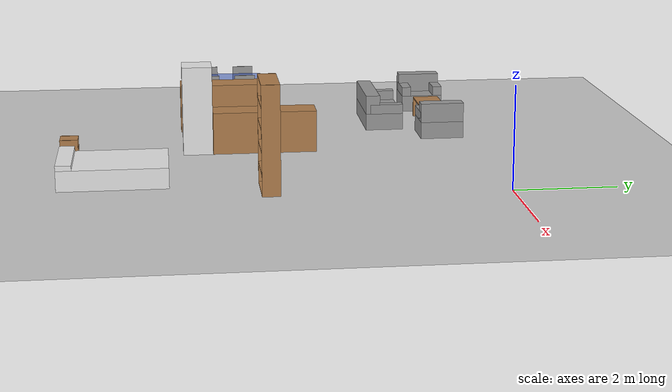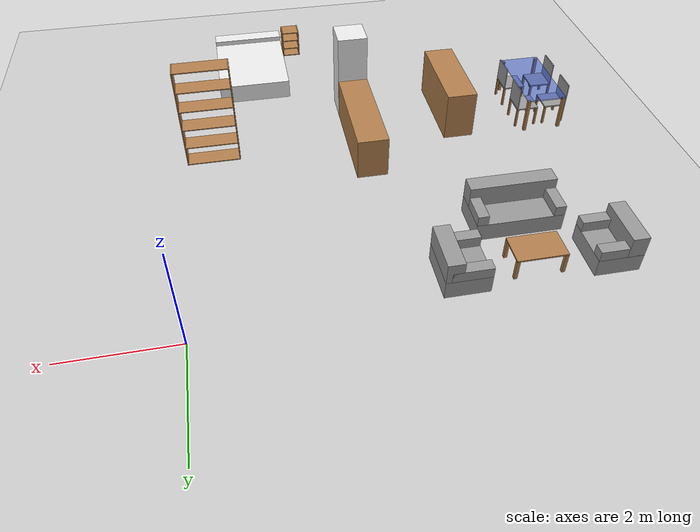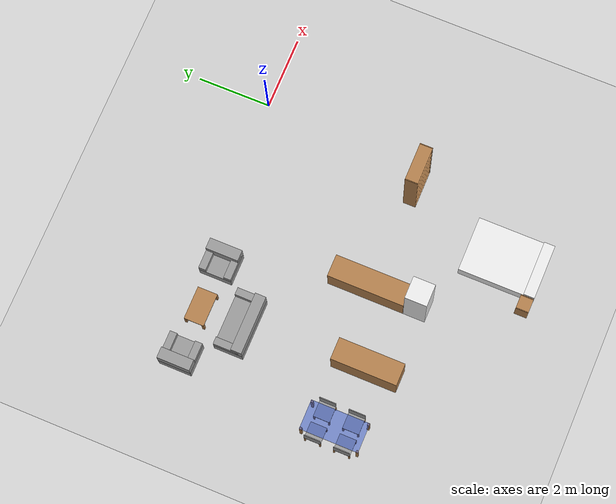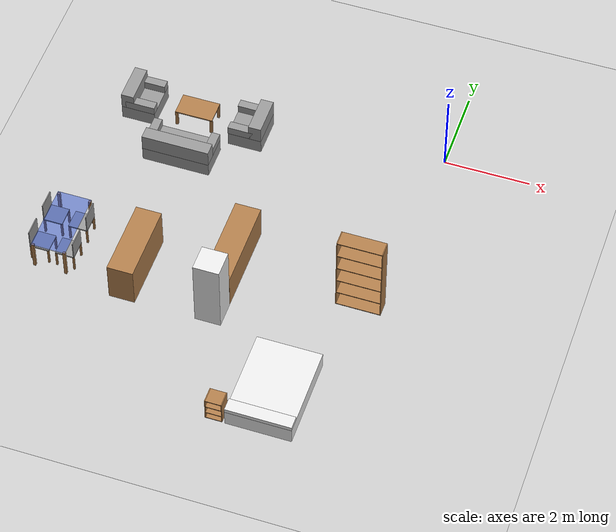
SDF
<sdf version="1.6">
 <world name="GrannyAnnie">
  <model name="ground_plane">
   <static>1</static>
   <link name="link">
    <collision name="collision">
     <geometry><plane><normal>0 0 1</normal><size>100 100</size></plane></geometry>
     <surface><friction><ode><mu>100</mu><mu2>50</mu2></ode></friction></surface>
    </collision>
    <visual name="visual">
     <cast_shadows>0</cast_shadows>
     <geometry><plane><normal>0 0 1</normal><size>100 100</size></plane></geometry>
     <material>
      <script><uri>file://media/materials/scripts/gazebo.material</uri><name>Gazebo/Grey</name></script>
     </material>
    </visual>
    <velocity_decay><linear>0</linear><angular>0</angular></velocity_decay>
   </link>
  </model>
  <model name="mesa_comedor">
   <link name="mesa_link">
    <inertial>
     <pose>0 0 0.513571 0 -0 0</pose>
     <mass>7</mass>
     <inertia>
      <ixx>1.28229</ixx>
      <ixy>0</ixy>
      <ixz>5.70179e-17</ixz>
      <iyy>3.10629</iyy>
      <iyz>0</iyz>
      <izz>3.4192</izz>
     </inertia>
    </inertial>
    <collision name="mesa_link_collision">
     <pose>0 0 0.725 0 -0 0</pose>
     <geometry><box><size>1.6 0.8 0.03</size></box></geometry>
     <surface><friction><ode><mu>1</mu><mu2>1</mu2></ode></friction></surface>
    </collision>
    <collision name="mesa_link_collision_pata_1_link">
     <pose>0.77 0.37 0.355 0 -0 0</pose>
     <geometry><box><size>0.06 0.06 0.71</size></box></geometry>
     <surface><friction><ode><mu>1</mu><mu2>1</mu2></ode></friction></surface>
     <surface><friction><ode><mu>1</mu><mu2>1</mu2></ode></friction></surface>
    </collision>
    <collision name="mesa_link_collision_pata_2_link">
     <pose>0.77 -0.37 0.355 0 -0 0</pose>
     <geometry><box><size>0.06 0.06 0.71</size></box></geometry>
     <surface><friction><ode><mu>1</mu><mu2>1</mu2></ode></friction></surface>
     <surface><friction><ode><mu>1</mu><mu2>1</mu2></ode></friction></surface>
    </collision>
    <collision name="mesa_link_collision_pata_3_link">
     <pose>-0.77 -0.37 0.355 0 -0 0</pose>
     <geometry><box><size>0.06 0.06 0.71</size></box></geometry>
     <surface><friction><ode><mu>1</mu><mu2>1</mu2></ode></friction></surface>
     <surface><friction><ode><mu>1</mu><mu2>1</mu2></ode></friction></surface>
    </collision>
    <collision name="mesa_link_collision_pata_4_link">
     <pose>-0.77 0.37 0.355 0 -0 0</pose>
     <geometry><box><size>0.06 0.06 0.71</size></box></geometry>
     <surface><friction><ode><mu>1</mu><mu2>1</mu2></ode></friction></surface>
     <surface><friction><ode><mu>1</mu><mu2>1</mu2></ode></friction></surface>
    </collision>
    <visual name="mesa_link_visual">
     <pose>0 0 0.725 0 -0 0</pose>
     <geometry><box><size>1.6 0.8 0.03</size></box></geometry>
     <material><script><name>Gazebo/BlueTransparent</name><uri>__default__</uri></script></material>
    </visual>
    <visual name="mesa_link_visual_pata_1_link">
     <pose>0.77 0.37 0.355 0 -0 0</pose>
     <geometry><box><size>0.06 0.06 0.71</size></box></geometry>
     <material><script><name>Gazebo/Wood</name><uri>__default__</uri></script></material>
    </visual>
    <visual name="mesa_link_visual_pata_2_link">
     <pose>0.77 -0.37 0.355 0 -0 0</pose>
     <geometry><box><size>0.06 0.06 0.71</size></box></geometry>
     <material><script><name>Gazebo/Wood</name><uri>__default__</uri></script></material>
    </visual>
    <visual name="mesa_link_visual_pata_3_link">
     <pose>-0.77 -0.37 0.355 0 -0 0</pose>
     <geometry><box><size>0.06 0.06 0.71</size></box></geometry>
     <material><script><name>Gazebo/Wood</name><uri>__default__</uri></script></material>
    </visual>
    <visual name="mesa_link_visual_pata_4_link">
     <pose>-0.77 0.37 0.355 0 -0 0</pose>
     <geometry><box><size>0.06 0.06 0.71</size></box></geometry>
     <material><script><name>Gazebo/Wood</name><uri>__default__</uri></script></material>
    </visual>
    <velocity_decay><linear>0</linear><angular>0</angular></velocity_decay>
    <velocity_decay><linear>0</linear><angular>0</angular></velocity_decay>
    <velocity_decay><linear>0</linear><angular>0</angular></velocity_decay>
    <velocity_decay><linear>0</linear><angular>0</angular></velocity_decay>
    <velocity_decay><linear>0</linear><angular>0</angular></velocity_decay>
    <self_collide>1</self_collide>
   </link>
   <pose>-7.4 -5 0 0 -0 1.57</pose>
   <static>0</static>
  </model>
  <model name="silla_1">
   <link name="silla_link">
    <inertial>
     <pose>0.0215 0 0.353 0 -0 0</pose>
     <mass>2</mass>
     <inertia>
      <ixx>0.674432</ixx>
      <ixy>0</ixy>
      <ixz>-0.012986</ixz>
      <iyy>0.682753</iyy>
      <iyz>0</iyz>
      <izz>0.675561</izz>
     </inertia>
    </inertial>
    <collision name="silla_link_collision">
     <pose>0 0 0.415 0 -0 0</pose>
     <geometry><box><size>0.45 0.45 0.03</size></box></geometry>
     <surface><friction><ode><mu>1</mu><mu2>1</mu2></ode></friction></surface>
    </collision>
    <collision name="silla_link_collision_pata_1_link">
     <pose>0.205 0.205 0.2 0 -0 0</pose>
     <geometry><box><size>0.04 0.04 0.4</size></box></geometry>
     <surface><friction><ode><mu>1</mu><mu2>1</mu2></ode></friction></surface>
     <surface><friction><ode><mu>1</mu><mu2>1</mu2></ode></friction></surface>
    </collision>
    <collision name="silla_link_collision_pata_2_link">
     <pose>0.205 -0.205 0.2 0 -0 0</pose>
     <geometry><box><size>0.04 0.04 0.4</size></box></geometry>
     <surface><friction><ode><mu>1</mu><mu2>1</mu2></ode></friction></surface>
     <surface><friction><ode><mu>1</mu><mu2>1</mu2></ode></friction></surface>
    </collision>
    <collision name="silla_link_collision_pata_3_link">
     <pose>-0.205 -0.205 0.2 0 -0 0</pose>
     <geometry><box><size>0.04 0.04 0.4</size></box></geometry>
     <surface><friction><ode><mu>1</mu><mu2>1</mu2></ode></friction></surface>
     <surface><friction><ode><mu>1</mu><mu2>1</mu2></ode></friction></surface>
    </collision>
    <collision name="silla_link_collision_pata_4_link">
     <pose>-0.205 0.205 0.2 0 -0 0</pose>
     <geometry><box><size>0.04 0.04 0.4</size></box></geometry>
     <surface><friction><ode><mu>1</mu><mu2>1</mu2></ode></friction></surface>
     <surface><friction><ode><mu>1</mu><mu2>1</mu2></ode></friction></surface>
    </collision>
    <collision name="silla_link_collision_respaldo_link">
     <pose>0.215 0 0.655 0 -0 0</pose>
     <geometry><box><size>0.02 0.45 0.45</size></box></geometry>
     <surface><friction><ode><mu>1</mu><mu2>1</mu2></ode></friction></surface>
     <surface><friction><ode><mu>1</mu><mu2>1</mu2></ode></friction></surface>
    </collision>
    <visual name="silla_link_visual">
     <pose>0 0 0.415 0 -0 0</pose>
     <geometry><box><size>0.45 0.45 0.03</size></box></geometry>
     <material><script><name>Gazebo/Grey</name><uri>__default__</uri></script></material>
    </visual>
    <visual name="silla_link_visual_pata_1_link">
     <pose>0.205 0.205 0.2 0 -0 0</pose>
     <geometry><box><size>0.04 0.04 0.4</size></box></geometry>
     <material><script><name>Gazebo/Wood</name><uri>__default__</uri></script></material>
    </visual>
    <visual name="silla_link_visual_pata_2_link">
     <pose>0.205 -0.205 0.2 0 -0 0</pose>
     <geometry><box><size>0.04 0.04 0.4</size></box></geometry>
     <material><script><name>Gazebo/Wood</name><uri>__default__</uri></script></material>
    </visual>
    <visual name="silla_link_visual_pata_3_link">
     <pose>-0.205 -0.205 0.2 0 -0 0</pose>
     <geometry><box><size>0.04 0.04 0.4</size></box></geometry>
     <material><script><name>Gazebo/Wood</name><uri>__default__</uri></script></material>
    </visual>
    <visual name="silla_link_visual_pata_4_link">
     <pose>-0.205 0.205 0.2 0 -0 0</pose>
     <geometry><box><size>0.04 0.04 0.4</size></box></geometry>
     <material><script><name>Gazebo/Wood</name><uri>__default__</uri></script></material>
    </visual>
    <visual name="silla_link_visual_respaldo_link">
     <pose>0.215 0 0.655 0 -0 0</pose>
     <geometry><box><size>0.02 0.45 0.45</size></box></geometry>
     <material><script><name>Gazebo/Grey</name><uri>__default__</uri></script></material>
    </visual>
    <velocity_decay><linear>0</linear><angular>0</angular></velocity_decay>
    <velocity_decay><linear>0</linear><angular>0</angular></velocity_decay>
    <velocity_decay><linear>0</linear><angular>0</angular></velocity_decay>
    <velocity_decay><linear>0</linear><angular>0</angular></velocity_decay>
    <velocity_decay><linear>0</linear><angular>0</angular></velocity_decay>
    <velocity_decay><linear>0</linear><angular>0</angular></velocity_decay>
    <self_collide>1</self_collide>
   </link>
   <pose>-7.1 -5.4 0 0 -0 0</pose>
   <static>0</static>
  </model>
  <model name="silla_2">
   <link name="silla_link">
    <inertial>
     <pose>0.0215 0 0.353 0 -0 0</pose>
     <mass>2</mass>
     <inertia>
      <ixx>0.674432</ixx>
      <ixy>0</ixy>
      <ixz>-0.012986</ixz>
      <iyy>0.682753</iyy>
      <iyz>0</iyz>
      <izz>0.675561</izz>
     </inertia>
    </inertial>
    <collision name="silla_link_collision">
     <pose>0 0 0.415 0 -0 0</pose>
     <geometry><box><size>0.45 0.45 0.03</size></box></geometry>
     <surface><friction><ode><mu>1</mu><mu2>1</mu2></ode></friction></surface>
    </collision>
    <collision name="silla_link_collision_pata_1_link">
     <pose>0.205 0.205 0.2 0 -0 0</pose>
     <geometry><box><size>0.04 0.04 0.4</size></box></geometry>
     <surface><friction><ode><mu>1</mu><mu2>1</mu2></ode></friction></surface>
     <surface><friction><ode><mu>1</mu><mu2>1</mu2></ode></friction></surface>
    </collision>
    <collision name="silla_link_collision_pata_2_link">
     <pose>0.205 -0.205 0.2 0 -0 0</pose>
     <geometry><box><size>0.04 0.04 0.4</size></box></geometry>
     <surface><friction><ode><mu>1</mu><mu2>1</mu2></ode></friction></surface>
     <surface><friction><ode><mu>1</mu><mu2>1</mu2></ode></friction></surface>
    </collision>
    <collision name="silla_link_collision_pata_3_link">
     <pose>-0.205 -0.205 0.2 0 -0 0</pose>
     <geometry><box><size>0.04 0.04 0.4</size></box></geometry>
     <surface><friction><ode><mu>1</mu><mu2>1</mu2></ode></friction></surface>
     <surface><friction><ode><mu>1</mu><mu2>1</mu2></ode></friction></surface>
    </collision>
    <collision name="silla_link_collision_pata_4_link">
     <pose>-0.205 0.205 0.2 0 -0 0</pose>
     <geometry><box><size>0.04 0.04 0.4</size></box></geometry>
     <surface><friction><ode><mu>1</mu><mu2>1</mu2></ode></friction></surface>
     <surface><friction><ode><mu>1</mu><mu2>1</mu2></ode></friction></surface>
    </collision>
    <collision name="silla_link_collision_respaldo_link">
     <pose>0.215 0 0.655 0 -0 0</pose>
     <geometry><box><size>0.02 0.45 0.45</size></box></geometry>
     <surface><friction><ode><mu>1</mu><mu2>1</mu2></ode></friction></surface>
     <surface><friction><ode><mu>1</mu><mu2>1</mu2></ode></friction></surface>
    </collision>
    <visual name="silla_link_visual">
     <pose>0 0 0.415 0 -0 0</pose>
     <geometry><box><size>0.45 0.45 0.03</size></box></geometry>
     <material><script><name>Gazebo/Grey</name><uri>__default__</uri></script></material>
    </visual>
    <visual name="silla_link_visual_pata_1_link">
     <pose>0.205 0.205 0.2 0 -0 0</pose>
     <geometry><box><size>0.04 0.04 0.4</size></box></geometry>
     <material><script><name>Gazebo/Wood</name><uri>__default__</uri></script></material>
    </visual>
    <visual name="silla_link_visual_pata_2_link">
     <pose>0.205 -0.205 0.2 0 -0 0</pose>
     <geometry><box><size>0.04 0.04 0.4</size></box></geometry>
     <material><script><name>Gazebo/Wood</name><uri>__default__</uri></script></material>
    </visual>
    <visual name="silla_link_visual_pata_3_link">
     <pose>-0.205 -0.205 0.2 0 -0 0</pose>
     <geometry><box><size>0.04 0.04 0.4</size></box></geometry>
     <material><script><name>Gazebo/Wood</name><uri>__default__</uri></script></material>
    </visual>
    <visual name="silla_link_visual_pata_4_link">
     <pose>-0.205 0.205 0.2 0 -0 0</pose>
     <geometry><box><size>0.04 0.04 0.4</size></box></geometry>
     <material><script><name>Gazebo/Wood</name><uri>__default__</uri></script></material>
    </visual>
    <visual name="silla_link_visual_respaldo_link">
     <pose>0.215 0 0.655 0 -0 0</pose>
     <geometry><box><size>0.02 0.45 0.45</size></box></geometry>
     <material><script><name>Gazebo/Grey</name><uri>__default__</uri></script></material>
    </visual>
    <velocity_decay><linear>0</linear><angular>0</angular></velocity_decay>
    <velocity_decay><linear>0</linear><angular>0</angular></velocity_decay>
    <velocity_decay><linear>0</linear><angular>0</angular></velocity_decay>
    <velocity_decay><linear>0</linear><angular>0</angular></velocity_decay>
    <velocity_decay><linear>0</linear><angular>0</angular></velocity_decay>
    <velocity_decay><linear>0</linear><angular>0</angular></velocity_decay>
    <self_collide>1</self_collide>
   </link>
   <pose>-7.1 -4.6 0 0 -0 0</pose>
   <static>0</static>
  </model>
  <model name="silla_3">
   <link name="silla_link">
    <inertial>
     <pose>0.0215 0 0.353 0 -0 0</pose>
     <mass>2</mass>
     <inertia>
      <ixx>0.674432</ixx>
      <ixy>0</ixy>
      <ixz>-0.012986</ixz>
      <iyy>0.682753</iyy>
      <iyz>0</iyz>
      <izz>0.675561</izz>
     </inertia>
    </inertial>
    <collision name="silla_link_collision">
     <pose>0 0 0.415 0 -0 0</pose>
     <geometry><box><size>0.45 0.45 0.03</size></box></geometry>
     <surface><friction><ode><mu>1</mu><mu2>1</mu2></ode></friction></surface>
    </collision>
    <collision name="silla_link_collision_pata_1_link">
     <pose>0.205 0.205 0.2 0 -0 0</pose>
     <geometry><box><size>0.04 0.04 0.4</size></box></geometry>
     <surface><friction><ode><mu>1</mu><mu2>1</mu2></ode></friction></surface>
     <surface><friction><ode><mu>1</mu><mu2>1</mu2></ode></friction></surface>
    </collision>
    <collision name="silla_link_collision_pata_2_link">
     <pose>0.205 -0.205 0.2 0 -0 0</pose>
     <geometry><box><size>0.04 0.04 0.4</size></box></geometry>
     <surface><friction><ode><mu>1</mu><mu2>1</mu2></ode></friction></surface>
     <surface><friction><ode><mu>1</mu><mu2>1</mu2></ode></friction></surface>
    </collision>
    <collision name="silla_link_collision_pata_3_link">
     <pose>-0.205 -0.205 0.2 0 -0 0</pose>
     <geometry><box><size>0.04 0.04 0.4</size></box></geometry>
     <surface><friction><ode><mu>1</mu><mu2>1</mu2></ode></friction></surface>
     <surface><friction><ode><mu>1</mu><mu2>1</mu2></ode></friction></surface>
    </collision>
    <collision name="silla_link_collision_pata_4_link">
     <pose>-0.205 0.205 0.2 0 -0 0</pose>
     <geometry><box><size>0.04 0.04 0.4</size></box></geometry>
     <surface><friction><ode><mu>1</mu><mu2>1</mu2></ode></friction></surface>
     <surface><friction><ode><mu>1</mu><mu2>1</mu2></ode></friction></surface>
    </collision>
    <collision name="silla_link_collision_respaldo_link">
     <pose>0.215 0 0.655 0 -0 0</pose>
     <geometry><box><size>0.02 0.45 0.45</size></box></geometry>
     <surface><friction><ode><mu>1</mu><mu2>1</mu2></ode></friction></surface>
     <surface><friction><ode><mu>1</mu><mu2>1</mu2></ode></friction></surface>
    </collision>
    <visual name="silla_link_visual">
     <pose>0 0 0.415 0 -0 0</pose>
     <geometry><box><size>0.45 0.45 0.03</size></box></geometry>
     <material><script><name>Gazebo/Grey</name><uri>__default__</uri></script></material>
    </visual>
    <visual name="silla_link_visual_pata_1_link">
     <pose>0.205 0.205 0.2 0 -0 0</pose>
     <geometry><box><size>0.04 0.04 0.4</size></box></geometry>
     <material><script><name>Gazebo/Wood</name><uri>__default__</uri></script></material>
    </visual>
    <visual name="silla_link_visual_pata_2_link">
     <pose>0.205 -0.205 0.2 0 -0 0</pose>
     <geometry><box><size>0.04 0.04 0.4</size></box></geometry>
     <material><script><name>Gazebo/Wood</name><uri>__default__</uri></script></material>
    </visual>
    <visual name="silla_link_visual_pata_3_link">
     <pose>-0.205 -0.205 0.2 0 -0 0</pose>
     <geometry><box><size>0.04 0.04 0.4</size></box></geometry>
     <material><script><name>Gazebo/Wood</name><uri>__default__</uri></script></material>
    </visual>
    <visual name="silla_link_visual_pata_4_link">
     <pose>-0.205 0.205 0.2 0 -0 0</pose>
     <geometry><box><size>0.04 0.04 0.4</size></box></geometry>
     <material><script><name>Gazebo/Wood</name><uri>__default__</uri></script></material>
    </visual>
    <visual name="silla_link_visual_respaldo_link">
     <pose>0.215 0 0.655 0 -0 0</pose>
     <geometry><box><size>0.02 0.45 0.45</size></box></geometry>
     <material><script><name>Gazebo/Grey</name><uri>__default__</uri></script></material>
    </visual>
    <velocity_decay><linear>0</linear><angular>0</angular></velocity_decay>
    <velocity_decay><linear>0</linear><angular>0</angular></velocity_decay>
    <velocity_decay><linear>0</linear><angular>0</angular></velocity_decay>
    <velocity_decay><linear>0</linear><angular>0</angular></velocity_decay>
    <velocity_decay><linear>0</linear><angular>0</angular></velocity_decay>
    <velocity_decay><linear>0</linear><angular>0</angular></velocity_decay>
    <self_collide>1</self_collide>
   </link>
   <pose>-7.7 -5.4 0 0 -0 3.14</pose>
   <static>0</static>
  </model>
  <model name="silla_4">
   <link name="silla_link">
    <inertial>
     <pose>0.0215 0 0.353 0 -0 0</pose>
     <mass>2</mass>
     <inertia>
      <ixx>0.674432</ixx>
      <ixy>0</ixy>
      <ixz>-0.012986</ixz>
      <iyy>0.682753</iyy>
      <iyz>0</iyz>
      <izz>0.675561</izz>
     </inertia>
    </inertial>
    <collision name="silla_link_collision">
     <pose>0 0 0.415 0 -0 0</pose>
     <geometry><box><size>0.45 0.45 0.03</size></box></geometry>
     <surface><friction><ode><mu>1</mu><mu2>1</mu2></ode></friction></surface>
    </collision>
    <collision name="silla_link_collision_pata_1_link">
     <pose>0.205 0.205 0.2 0 -0 0</pose>
     <geometry><box><size>0.04 0.04 0.4</size></box></geometry>
     <surface><friction><ode><mu>1</mu><mu2>1</mu2></ode></friction></surface>
     <surface><friction><ode><mu>1</mu><mu2>1</mu2></ode></friction></surface>
    </collision>
    <collision name="silla_link_collision_pata_2_link">
     <pose>0.205 -0.205 0.2 0 -0 0</pose>
     <geometry><box><size>0.04 0.04 0.4</size></box></geometry>
     <surface><friction><ode><mu>1</mu><mu2>1</mu2></ode></friction></surface>
     <surface><friction><ode><mu>1</mu><mu2>1</mu2></ode></friction></surface>
    </collision>
    <collision name="silla_link_collision_pata_3_link">
     <pose>-0.205 -0.205 0.2 0 -0 0</pose>
     <geometry><box><size>0.04 0.04 0.4</size></box></geometry>
     <surface><friction><ode><mu>1</mu><mu2>1</mu2></ode></friction></surface>
     <surface><friction><ode><mu>1</mu><mu2>1</mu2></ode></friction></surface>
    </collision>
    <collision name="silla_link_collision_pata_4_link">
     <pose>-0.205 0.205 0.2 0 -0 0</pose>
     <geometry><box><size>0.04 0.04 0.4</size></box></geometry>
     <surface><friction><ode><mu>1</mu><mu2>1</mu2></ode></friction></surface>
     <surface><friction><ode><mu>1</mu><mu2>1</mu2></ode></friction></surface>
    </collision>
    <collision name="silla_link_collision_respaldo_link">
     <pose>0.215 0 0.655 0 -0 0</pose>
     <geometry><box><size>0.02 0.45 0.45</size></box></geometry>
     <surface><friction><ode><mu>1</mu><mu2>1</mu2></ode></friction></surface>
     <surface><friction><ode><mu>1</mu><mu2>1</mu2></ode></friction></surface>
    </collision>
    <visual name="silla_link_visual">
     <pose>0 0 0.415 0 -0 0</pose>
     <geometry><box><size>0.45 0.45 0.03</size></box></geometry>
     <material><script><name>Gazebo/Grey</name><uri>__default__</uri></script></material>
    </visual>
    <visual name="silla_link_visual_pata_1_link">
     <pose>0.205 0.205 0.2 0 -0 0</pose>
     <geometry><box><size>0.04 0.04 0.4</size></box></geometry>
     <material><script><name>Gazebo/Wood</name><uri>__default__</uri></script></material>
    </visual>
    <visual name="silla_link_visual_pata_2_link">
     <pose>0.205 -0.205 0.2 0 -0 0</pose>
     <geometry><box><size>0.04 0.04 0.4</size></box></geometry>
     <material><script><name>Gazebo/Wood</name><uri>__default__</uri></script></material>
    </visual>
    <visual name="silla_link_visual_pata_3_link">
     <pose>-0.205 -0.205 0.2 0 -0 0</pose>
     <geometry><box><size>0.04 0.04 0.4</size></box></geometry>
     <material><script><name>Gazebo/Wood</name><uri>__default__</uri></script></material>
    </visual>
    <visual name="silla_link_visual_pata_4_link">
     <pose>-0.205 0.205 0.2 0 -0 0</pose>
     <geometry><box><size>0.04 0.04 0.4</size></box></geometry>
     <material><script><name>Gazebo/Wood</name><uri>__default__</uri></script></material>
    </visual>
    <visual name="silla_link_visual_respaldo_link">
     <pose>0.215 0 0.655 0 -0 0</pose>
     <geometry><box><size>0.02 0.45 0.45</size></box></geometry>
     <material><script><name>Gazebo/Grey</name><uri>__default__</uri></script></material>
    </visual>
    <velocity_decay><linear>0</linear><angular>0</angular></velocity_decay>
    <velocity_decay><linear>0</linear><angular>0</angular></velocity_decay>
    <velocity_decay><linear>0</linear><angular>0</angular></velocity_decay>
    <velocity_decay><linear>0</linear><angular>0</angular></velocity_decay>
    <velocity_decay><linear>0</linear><angular>0</angular></velocity_decay>
    <velocity_decay><linear>0</linear><angular>0</angular></velocity_decay>
    <self_collide>1</self_collide>
   </link>
   <pose>-7.7 -4.6 0 0 -0 3.14</pose>
   <static>0</static>
  </model>
  <model name="mesa_salon">
   <link name="mesa_link">
    <inertial>
     <pose>0 0 0.3075 0 -0 0</pose>
     <mass>4</mass>
     <inertia>
      <ixx>0.666275</ixx>
      <ixy>1.92593e-34</ixy>
      <ixz>1.70697e-17</ixz>
      <iyy>0.899025</iyy>
      <iyz>4.26742e-18</iyz>
      <izz>0.97285</izz>
     </inertia>
    </inertial>
    <collision name="mesa_link_collision">
     <pose>0 0 0.415 0 -0 0</pose>
     <geometry><box><size>0.9 0.55 0.03</size></box></geometry>
     <surface><friction><ode><mu>1</mu><mu2>1</mu2></ode></friction></surface>
    </collision>
    <collision name="mesa_link_collision_pata_1_link">
     <pose>0.42 0.245 0.2 0 -0 0</pose>
     <geometry><box><size>0.06 0.06 0.4</size></box></geometry>
     <surface><friction><ode><mu>1</mu><mu2>1</mu2></ode></friction></surface>
     <surface><friction><ode><mu>1</mu><mu2>1</mu2></ode></friction></surface>
    </collision>
    <collision name="mesa_link_collision_pata_2_link">
     <pose>0.42 -0.245 0.2 0 -0 0</pose>
     <geometry><box><size>0.06 0.06 0.4</size></box></geometry>
     <surface><friction><ode><mu>1</mu><mu2>1</mu2></ode></friction></surface>
     <surface><friction><ode><mu>1</mu><mu2>1</mu2></ode></friction></surface>
    </collision>
    <collision name="mesa_link_collision_pata_3_link">
     <pose>-0.42 -0.245 0.2 0 -0 0</pose>
     <geometry><box><size>0.06 0.06 0.4</size></box></geometry>
     <surface><friction><ode><mu>1</mu><mu2>1</mu2></ode></friction></surface>
     <surface><friction><ode><mu>1</mu><mu2>1</mu2></ode></friction></surface>
    </collision>
    <collision name="mesa_link_collision_pata_4_link">
     <pose>-0.42 0.245 0.2 0 -0 0</pose>
     <geometry><box><size>0.06 0.06 0.4</size></box></geometry>
     <surface><friction><ode><mu>1</mu><mu2>1</mu2></ode></friction></surface>
     <surface><friction><ode><mu>1</mu><mu2>1</mu2></ode></friction></surface>
    </collision>
    <visual name="mesa_link_visual">
     <pose>0 0 0.415 0 -0 0</pose>
     <geometry><box><size>0.9 0.55 0.03</size></box></geometry>
     <material><script><name>Gazebo/Wood</name><uri>__default__</uri></script></material>
    </visual>
    <visual name="mesa_link_visual_pata_1_link">
     <pose>0.42 0.245 0.2 0 -0 0</pose>
     <geometry><box><size>0.06 0.06 0.4</size></box></geometry>
     <material><script><name>Gazebo/Wood</name><uri>__default__</uri></script></material>
    </visual>
    <visual name="mesa_link_visual_pata_2_link">
     <pose>0.42 -0.245 0.2 0 -0 0</pose>
     <geometry><box><size>0.06 0.06 0.4</size></box></geometry>
     <material><script><name>Gazebo/Wood</name><uri>__default__</uri></script></material>
    </visual>
    <visual name="mesa_link_visual_pata_3_link">
     <pose>-0.42 -0.245 0.2 0 -0 0</pose>
     <geometry><box><size>0.06 0.06 0.4</size></box></geometry>
     <material><script><name>Gazebo/Wood</name><uri>__default__</uri></script></material>
    </visual>
    <visual name="mesa_link_visual_pata_4_link">
     <pose>-0.42 0.245 0.2 0 -0 0</pose>
     <geometry><box><size>0.06 0.06 0.4</size></box></geometry>
     <material><script><name>Gazebo/Wood</name><uri>__default__</uri></script></material>
    </visual>
    <velocity_decay><linear>0</linear><angular>0</angular></velocity_decay>
    <velocity_decay><linear>0</linear><angular>0</angular></velocity_decay>
    <velocity_decay><linear>0</linear><angular>0</angular></velocity_decay>
    <velocity_decay><linear>0</linear><angular>0</angular></velocity_decay>
    <velocity_decay><linear>0</linear><angular>0</angular></velocity_decay>
    <self_collide>1</self_collide>
   </link>
   <pose>-5.8 -0.6 0 0 -0 0</pose>
   <static>0</static>
  </model>
  <model name="sofa_x2_salon">
   <link name="sofa_link">
    <inertial>
     <pose>0 0.011539 0.257692 0 -0 0</pose>
     <mass>13</mass>
     <inertia>
      <ixx>0.7625</ixx>
      <ixy>0</ixy>
      <ixz>0</ixz>
      <iyy>1.67673</iyy>
      <iyz>-0.0463462</iyz>
      <izz>1.44577</izz>
     </inertia>
    </inertial>
    <collision name="sofa_link_collision">
     <pose>0 0 0.175 0 -0 0</pose>
     <geometry><box><size>1.6 0.8 0.35</size></box></geometry>
     <surface><friction><ode><mu>1</mu><mu2>1</mu2></ode></friction></surface>
    </collision>
    <collision name="sofa_link_collision_brazo_1_link">
     <pose>0.7 -0.05 0.45 0 -0 0</pose>
     <geometry><box><size>0.2 0.7 0.2</size></box></geometry>
     <surface><friction><ode><mu>1</mu><mu2>1</mu2></ode></friction></surface>
     <surface><friction><ode><mu>1</mu><mu2>1</mu2></ode></friction></surface>
    </collision>
    <collision name="sofa_link_collision_brazo_2_link">
     <pose>-0.7 -0.05 0.45 0 -0 0</pose>
     <geometry><box><size>0.2 0.7 0.2</size></box></geometry>
     <surface><friction><ode><mu>1</mu><mu2>1</mu2></ode></friction></surface>
     <surface><friction><ode><mu>1</mu><mu2>1</mu2></ode></friction></surface>
    </collision>
    <collision name="sofa_link_collision_respaldo_link">
     <pose>0 0.25 0.55 0 -0 0</pose>
     <geometry><box><size>1.6 0.3 0.4</size></box></geometry>
     <surface><friction><ode><mu>1</mu><mu2>1</mu2></ode></friction></surface>
     <surface><friction><ode><mu>1</mu><mu2>1</mu2></ode></friction></surface>
    </collision>
    <visual name="sofa_link_visual">
     <pose>0 0 0.175 0 -0 0</pose>
     <geometry><box><size>1.6 0.8 0.35</size></box></geometry>
     <material><script><name>Gazebo/Grey</name><uri>__default__</uri></script></material>
    </visual>
    <visual name="sofa_link_visual_brazo_1_link">
     <pose>0.7 -0.05 0.45 0 -0 0</pose>
     <geometry><box><size>0.2 0.7 0.2</size></box></geometry>
     <material><script><name>Gazebo/Grey</name><uri>__default__</uri></script></material>
    </visual>
    <visual name="sofa_link_visual_brazo_2_link">
     <pose>-0.7 -0.05 0.45 0 -0 0</pose>
     <geometry><box><size>0.2 0.7 0.2</size></box></geometry>
     <material><script><name>Gazebo/Grey</name><uri>__default__</uri></script></material>
    </visual>
    <visual name="sofa_link_visual_respaldo_link">
     <pose>0 0.25 0.55 0 -0 0</pose>
     <geometry><box><size>1.6 0.3 0.4</size></box></geometry>
     <material><script><name>Gazebo/Grey</name><uri>__default__</uri></script></material>
    </visual>
    <velocity_decay><linear>0</linear><angular>0</angular></velocity_decay>
    <velocity_decay><linear>0</linear><angular>0</angular></velocity_decay>
    <velocity_decay><linear>0</linear><angular>0</angular></velocity_decay>
    <velocity_decay><linear>0</linear><angular>0</angular></velocity_decay>
    <self_collide>1</self_collide>
   </link>
   <pose>-5.8 -1.7 0 0 -0 3.14</pose>
   <static>0</static>
  </model>
  <model name="sofa_x1_1_salon">
   <link name="sofa_link">
    <inertial>
     <pose>0 0.01875 0.309375 0 -0 0</pose>
     <mass>8</mass>
     <inertia>
      <ixx>0.705859</ixx>
      <ixy>0</ixy>
      <ixz>0</ixz>
      <iyy>0.886172</iyy>
      <iyz>-0.0385938</iyz>
      <izz>0.709687</izz>
     </inertia>
    </inertial>
    <collision name="sofa_link_collision">
     <pose>0 0 0.175 0 -0 0</pose>
     <geometry><box><size>0.9 0.8 0.35</size></box></geometry>
     <surface><friction><ode><mu>1</mu><mu2>1</mu2></ode></friction></surface>
    </collision>
    <collision name="sofa_link_collision_brazo_1_link">
     <pose>0.35 -0.05 0.45 0 -0 0</pose>
     <geometry><box><size>0.2 0.7 0.2</size></box></geometry>
     <surface><friction><ode><mu>1</mu><mu2>1</mu2></ode></friction></surface>
     <surface><friction><ode><mu>1</mu><mu2>1</mu2></ode></friction></surface>
    </collision>
    <collision name="sofa_link_collision_brazo_2_link">
     <pose>-0.35 -0.05 0.45 0 -0 0</pose>
     <geometry><box><size>0.2 0.7 0.2</size></box></geometry>
     <surface><friction><ode><mu>1</mu><mu2>1</mu2></ode></friction></surface>
     <surface><friction><ode><mu>1</mu><mu2>1</mu2></ode></friction></surface>
    </collision>
    <collision name="sofa_link_collision_respaldo_link">
     <pose>0 0.25 0.55 0 -0 0</pose>
     <geometry><box><size>0.9 0.3 0.4</size></box></geometry>
     <surface><friction><ode><mu>1</mu><mu2>1</mu2></ode></friction></surface>
     <surface><friction><ode><mu>1</mu><mu2>1</mu2></ode></friction></surface>
    </collision>
    <visual name="sofa_link_visual">
     <pose>0 0 0.175 0 -0 0</pose>
     <geometry><box><size>0.9 0.8 0.35</size></box></geometry>
     <material><script><name>Gazebo/Grey</name><uri>__default__</uri></script></material>
    </visual>
    <visual name="sofa_link_visual_brazo_1_link">
     <pose>0.35 -0.05 0.45 0 -0 0</pose>
     <geometry><box><size>0.2 0.7 0.2</size></box></geometry>
     <material><script><name>Gazebo/Grey</name><uri>__default__</uri></script></material>
    </visual>
    <visual name="sofa_link_visual_brazo_2_link">
     <pose>-0.35 -0.05 0.45 0 -0 0</pose>
     <geometry><box><size>0.2 0.7 0.2</size></box></geometry>
     <material><script><name>Gazebo/Grey</name><uri>__default__</uri></script></material>
    </visual>
    <visual name="sofa_link_visual_respaldo_link">
     <pose>0 0.25 0.55 0 -0 0</pose>
     <geometry><box><size>0.9 0.3 0.4</size></box></geometry>
     <material><script><name>Gazebo/Grey</name><uri>__default__</uri></script></material>
    </visual>
    <velocity_decay><linear>0</linear><angular>0</angular></velocity_decay>
    <velocity_decay><linear>0</linear><angular>0</angular></velocity_decay>
    <velocity_decay><linear>0</linear><angular>0</angular></velocity_decay>
    <velocity_decay><linear>0</linear><angular>0</angular></velocity_decay>
    <self_collide>1</self_collide>
   </link>
   <pose>-4.5 -0.6 0 0 0 -1.57</pose>
   <static>0</static>
  </model>
  <model name="sofa_x1_2_salon">
   <link name="sofa_link">
    <inertial>
     <pose>0 0.01875 0.309375 0 -0 0</pose>
     <mass>8</mass>
     <inertia>
      <ixx>0.705859</ixx>
      <ixy>0</ixy>
      <ixz>0</ixz>
      <iyy>0.886172</iyy>
      <iyz>-0.0385938</iyz>
      <izz>0.709687</izz>
     </inertia>
    </inertial>
    <collision name="sofa_link_collision">
     <pose>0 0 0.175 0 -0 0</pose>
     <geometry><box><size>0.9 0.8 0.35</size></box></geometry>
     <surface><friction><ode><mu>1</mu><mu2>1</mu2></ode></friction></surface>
    </collision>
    <collision name="sofa_link_collision_brazo_1_link">
     <pose>0.35 -0.05 0.45 0 -0 0</pose>
     <geometry><box><size>0.2 0.7 0.2</size></box></geometry>
     <surface><friction><ode><mu>1</mu><mu2>1</mu2></ode></friction></surface>
     <surface><friction><ode><mu>1</mu><mu2>1</mu2></ode></friction></surface>
    </collision>
    <collision name="sofa_link_collision_brazo_2_link">
     <pose>-0.35 -0.05 0.45 0 -0 0</pose>
     <geometry><box><size>0.2 0.7 0.2</size></box></geometry>
     <surface><friction><ode><mu>1</mu><mu2>1</mu2></ode></friction></surface>
     <surface><friction><ode><mu>1</mu><mu2>1</mu2></ode></friction></surface>
    </collision>
    <collision name="sofa_link_collision_respaldo_link">
     <pose>0 0.25 0.55 0 -0 0</pose>
     <geometry><box><size>0.9 0.3 0.4</size></box></geometry>
     <surface><friction><ode><mu>1</mu><mu2>1</mu2></ode></friction></surface>
     <surface><friction><ode><mu>1</mu><mu2>1</mu2></ode></friction></surface>
    </collision>
    <visual name="sofa_link_visual">
     <pose>0 0 0.175 0 -0 0</pose>
     <geometry><box><size>0.9 0.8 0.35</size></box></geometry>
     <material><script><name>Gazebo/Grey</name><uri>__default__</uri></script></material>
    </visual>
    <visual name="sofa_link_visual_brazo_1_link">
     <pose>0.35 -0.05 0.45 0 -0 0</pose>
     <geometry><box><size>0.2 0.7 0.2</size></box></geometry>
     <material><script><name>Gazebo/Grey</name><uri>__default__</uri></script></material>
    </visual>
    <visual name="sofa_link_visual_brazo_2_link">
     <pose>-0.35 -0.05 0.45 0 -0 0</pose>
     <geometry><box><size>0.2 0.7 0.2</size></box></geometry>
     <material><script><name>Gazebo/Grey</name><uri>__default__</uri></script></material>
    </visual>
    <visual name="sofa_link_visual_respaldo_link">
     <pose>0 0.25 0.55 0 -0 0</pose>
     <geometry><box><size>0.9 0.3 0.4</size></box></geometry>
     <material><script><name>Gazebo/Grey</name><uri>__default__</uri></script></material>
    </visual>
    <velocity_decay><linear>0</linear><angular>0</angular></velocity_decay>
    <velocity_decay><linear>0</linear><angular>0</angular></velocity_decay>
    <velocity_decay><linear>0</linear><angular>0</angular></velocity_decay>
    <velocity_decay><linear>0</linear><angular>0</angular></velocity_decay>
    <self_collide>1</self_collide>
   </link>
   <pose>-7.1 -0.6 0 0 -0 1.57</pose>
   <static>0</static>
  </model>
  <model name="encimera">
   <link name="encimera_link">
    <inertial>
     <pose>0 0 0.425 0 -0 0</pose>
     <mass>50</mass>
     <inertia><ixx>5</ixx><ixy>0</ixy><ixz>0</ixz><iyy>5</iyy><iyz>0</iyz><izz>5</izz></inertia>
    </inertial>
    <collision name="encimera_link_collision">
     <pose>0 0 0.425 0 -0 0</pose>
     <geometry><box><size>2.1 0.6 0.85</size></box></geometry>
     <surface><friction><ode><mu>1</mu><mu2>1</mu2></ode></friction></surface>
    </collision>
    <visual name="encimera_link_visual">
     <pose>0 0 0.425 0 -0 0</pose>
     <geometry><box><size>2.1 0.6 0.85</size></box></geometry>
     <material><script><name>Gazebo/Wood</name><uri>__default__</uri></script></material>
    </visual>
    <velocity_decay><linear>0</linear><angular>0</angular></velocity_decay>
    <self_collide>1</self_collide>
   </link>
   <pose>-3.6 -4.39 0 0 -0 1.57</pose>
   <static>0</static>
  </model>
  <model name="barra">
   <link name="barra_link">
    <inertial>
     <pose>0 0 0.5 0 -0 0</pose>
     <mass>50</mass>
     <inertia><ixx>5</ixx><ixy>0</ixy><ixz>0</ixz><iyy>5</iyy><iyz>0</iyz><izz>5</izz></inertia>
    </inertial>
    <collision name="barra_link_collision">
     <pose>0 0 0.5 0 -0 0</pose>
     <geometry><box><size>1.8 0.6 1</size></box></geometry>
     <surface><friction><ode><mu>1</mu><mu2>1</mu2></ode></friction></surface>
    </collision>
    <visual name="barra_link_visual">
     <pose>0 0 0.5 0 -0 0</pose>
     <geometry><box><size>1.8 0.6 1</size></box></geometry>
     <material><script><name>Gazebo/Wood</name><uri>__default__</uri></script></material>
    </visual>
    <velocity_decay><linear>0</linear><angular>0</angular></velocity_decay>
    <self_collide>1</self_collide>
   </link>
   <pose>-5.6 -5.16 0 0 -0 1.57</pose>
   <static>0</static>
  </model>
  <model name="frigo">
   <link name="frigo_link">
    <inertial>
     <pose>0 0 0.9 0 -0 0</pose>
     <mass>50</mass>
     <inertia><ixx>5</ixx><ixy>0</ixy><ixz>0</ixz><iyy>5</iyy><iyz>0</iyz><izz>5</izz></inertia>
    </inertial>
    <collision name="frigo_link_collision">
     <pose>0 0 0.9 0 -0 0</pose>
     <geometry><box><size>0.6 0.6 1.8</size></box></geometry>
     <surface><friction><ode><mu>1</mu><mu2>1</mu2></ode></friction></surface>
    </collision>
    <visual name="frigo_link_visual">
     <pose>0 0 0.9 0 -0 0</pose>
     <geometry><box><size>0.6 0.6 1.8</size></box></geometry>
     <material><script><name>Gazebo/White</name><uri>__default__</uri></script></material>
    </visual>
    <velocity_decay><linear>0</linear><angular>0</angular></velocity_decay>
    <self_collide>1</self_collide>
   </link>
   <pose>-3.6 -5.75 0 0 -0 0</pose>
   <static>0</static>
  </model>
  <model name="estanteria_2">
   <link name="estanteria_link">
    <inertial>
     <pose>0 0 1.046 0 -0 0</pose>
     <mass>10</mass>
     <inertia><ixx>3.12544</ixx><ixy>0</ixy><ixz>0</ixz><iyy>4.16584</iyy><iyz>0</iyz><izz>1.1204</izz></inertia>
    </inertial>
    <collision name="estanteria_link_collision">
     <pose>0 0 0.01 0 -0 0</pose>
     <geometry><box><size>1 0.35 0.02</size></box></geometry>
     <surface><friction><ode><mu>1</mu><mu2>1</mu2></ode></friction></surface>
    </collision>
    <collision name="estanteria_link_collision_basal_1_link">
     <pose>0 0 0.41 0 -0 0</pose>
     <geometry><box><size>1 0.35 0.02</size></box></geometry>
     <surface><friction><ode><mu>1</mu><mu2>1</mu2></ode></friction></surface>
     <surface><friction><ode><mu>1</mu><mu2>1</mu2></ode></friction></surface>
    </collision>
    <collision name="estanteria_link_collision_basal_2_link">
     <pose>0 0 0.83 0 -0 0</pose>
     <geometry><box><size>1 0.35 0.02</size></box></geometry>
     <surface><friction><ode><mu>1</mu><mu2>1</mu2></ode></friction></surface>
     <surface><friction><ode><mu>1</mu><mu2>1</mu2></ode></friction></surface>
    </collision>
    <collision name="estanteria_link_collision_basal_3_link">
     <pose>0 0 1.25 0 -0 0</pose>
     <geometry><box><size>1 0.35 0.02</size></box></geometry>
     <surface><friction><ode><mu>1</mu><mu2>1</mu2></ode></friction></surface>
     <surface><friction><ode><mu>1</mu><mu2>1</mu2></ode></friction></surface>
    </collision>
    <collision name="estanteria_link_collision_basal_4_link">
     <pose>0 0 1.67 0 -0 0</pose>
     <geometry><box><size>1 0.35 0.02</size></box></geometry>
     <surface><friction><ode><mu>1</mu><mu2>1</mu2></ode></friction></surface>
     <surface><friction><ode><mu>1</mu><mu2>1</mu2></ode></friction></surface>
    </collision>
    <collision name="estanteria_link_collision_basal_5_link">
     <pose>0 0 2.09 0 -0 0</pose>
     <geometry><box><size>1 0.35 0.02</size></box></geometry>
     <surface><friction><ode><mu>1</mu><mu2>1</mu2></ode></friction></surface>
     <surface><friction><ode><mu>1</mu><mu2>1</mu2></ode></friction></surface>
    </collision>
    <collision name="estanteria_link_collision_lateral_1_link">
     <pose>0.51 0 1.05 0 -0 0</pose>
     <geometry><box><size>0.02 0.35 2.1</size></box></geometry>
     <surface><friction><ode><mu>1</mu><mu2>1</mu2></ode></friction></surface>
     <surface><friction><ode><mu>1</mu><mu2>1</mu2></ode></friction></surface>
    </collision>
    <collision name="estanteria_link_collision_lateral_2_link">
     <pose>-0.51 0 1.05 0 -0 0</pose>
     <geometry><box><size>0.02 0.35 2.1</size></box></geometry>
     <surface><friction><ode><mu>1</mu><mu2>1</mu2></ode></friction></surface>
     <surface><friction><ode><mu>1</mu><mu2>1</mu2></ode></friction></surface>
    </collision>
    <visual name="estanteria_link_visual">
     <pose>0 0 0.01 0 -0 0</pose>
     <geometry><box><size>1 0.35 0.02</size></box></geometry>
     <material><script><name>Gazebo/Wood</name><uri>__default__</uri></script></material>
    </visual>
    <visual name="estanteria_link_visual_basal_1_link">
     <pose>0 0 0.41 0 -0 0</pose>
     <geometry><box><size>1 0.35 0.02</size></box></geometry>
     <material><script><name>Gazebo/Wood</name><uri>__default__</uri></script></material>
    </visual>
    <visual name="estanteria_link_visual_basal_2_link">
     <pose>0 0 0.83 0 -0 0</pose>
     <geometry><box><size>1 0.35 0.02</size></box></geometry>
     <material><script><name>Gazebo/Wood</name><uri>__default__</uri></script></material>
    </visual>
    <visual name="estanteria_link_visual_basal_3_link">
     <pose>0 0 1.25 0 -0 0</pose>
     <geometry><box><size>1 0.35 0.02</size></box></geometry>
     <material><script><name>Gazebo/Wood</name><uri>__default__</uri></script></material>
    </visual>
    <visual name="estanteria_link_visual_basal_4_link">
     <pose>0 0 1.67 0 -0 0</pose>
     <geometry><box><size>1 0.35 0.02</size></box></geometry>
     <material><script><name>Gazebo/Wood</name><uri>__default__</uri></script></material>
    </visual>
    <visual name="estanteria_link_visual_basal_5_link">
     <pose>0 0 2.09 0 -0 0</pose>
     <geometry><box><size>1 0.35 0.02</size></box></geometry>
     <material><script><name>Gazebo/Wood</name><uri>__default__</uri></script></material>
    </visual>
    <visual name="estanteria_link_visual_lateral_1_link">
     <pose>0.51 0 1.05 0 -0 0</pose>
     <geometry><box><size>0.02 0.35 2.1</size></box></geometry>
     <material><script><name>Gazebo/Wood</name><uri>__default__</uri></script></material>
    </visual>
    <visual name="estanteria_link_visual_lateral_2_link">
     <pose>-0.51 0 1.05 0 -0 0</pose>
     <geometry><box><size>0.02 0.35 2.1</size></box></geometry>
     <material><script><name>Gazebo/Wood</name><uri>__default__</uri></script></material>
    </visual>
    <velocity_decay><linear>0</linear><angular>0</angular></velocity_decay>
    <velocity_decay><linear>0</linear><angular>0</angular></velocity_decay>
    <velocity_decay><linear>0</linear><angular>0</angular></velocity_decay>
    <velocity_decay><linear>0</linear><angular>0</angular></velocity_decay>
    <velocity_decay><linear>0</linear><angular>0</angular></velocity_decay>
    <velocity_decay><linear>0</linear><angular>0</angular></velocity_decay>
    <velocity_decay><linear>0</linear><angular>0</angular></velocity_decay>
    <velocity_decay><linear>0</linear><angular>0</angular></velocity_decay>
    <self_collide>1</self_collide>
   </link>
   <pose>-0.6 -4.5 0 0 -0 0</pose>
   <static>0</static>
  </model>
  <model name="mesita_1">
   <link name="mesita_link">
    <inertial>
     <pose>0 0 0.2975 0 -0 0</pose>
     <mass>8</mass>
     <inertia><ixx>0.24835</ixx><ixy>0</ixy><ixz>0</ixz><iyy>0.38525</iyy><iyz>0</iyz><izz>0.1969</izz></inertia>
    </inertial>
    <collision name="mesita_link_collision">
     <pose>0 0 0.01 0 -0 0</pose>
     <geometry><box><size>0.35 0.35 0.02</size></box></geometry>
     <surface><friction><ode><mu>1</mu><mu2>1</mu2></ode></friction></surface>
    </collision>
    <collision name="mesita_link_collision_basal_1_link">
     <pose>0 0 0.19 0 -0 0</pose>
     <geometry><box><size>0.35 0.35 0.02</size></box></geometry>
     <surface><friction><ode><mu>1</mu><mu2>1</mu2></ode></friction></surface>
     <surface><friction><ode><mu>1</mu><mu2>1</mu2></ode></friction></surface>
    </collision>
    <collision name="mesita_link_collision_basal_2_link">
     <pose>0 0 0.39 0 -0 0</pose>
     <geometry><box><size>0.35 0.35 0.02</size></box></geometry>
     <surface><friction><ode><mu>1</mu><mu2>1</mu2></ode></friction></surface>
     <surface><friction><ode><mu>1</mu><mu2>1</mu2></ode></friction></surface>
    </collision>
    <collision name="mesita_link_collision_basal_3_link">
     <pose>0 0 0.59 0 -0 0</pose>
     <geometry><box><size>0.35 0.35 0.02</size></box></geometry>
     <surface><friction><ode><mu>1</mu><mu2>1</mu2></ode></friction></surface>
     <surface><friction><ode><mu>1</mu><mu2>1</mu2></ode></friction></surface>
    </collision>
    <collision name="mesita_link_collision_lateral_1_link">
     <pose>0.185 0 0.3 0 -0 0</pose>
     <geometry><box><size>0.02 0.35 0.6</size></box></geometry>
     <surface><friction><ode><mu>1</mu><mu2>1</mu2></ode></friction></surface>
     <surface><friction><ode><mu>1</mu><mu2>1</mu2></ode></friction></surface>
    </collision>
    <collision name="mesita_link_collision_lateral_2_link">
     <pose>-0.185 0 0.3 0 -0 0</pose>
     <geometry><box><size>0.02 0.35 0.6</size></box></geometry>
     <surface><friction><ode><mu>1</mu><mu2>1</mu2></ode></friction></surface>
     <surface><friction><ode><mu>1</mu><mu2>1</mu2></ode></friction></surface>
    </collision>
    <visual name="mesita_link_visual">
     <pose>0 0 0.01 0 -0 0</pose>
     <geometry><box><size>0.35 0.35 0.02</size></box></geometry>
     <material><script><name>Gazebo/Wood</name><uri>__default__</uri></script></material>
    </visual>
    <visual name="mesita_link_visual_basal_1_link">
     <pose>0 0 0.19 0 -0 0</pose>
     <geometry><box><size>0.35 0.35 0.02</size></box></geometry>
     <material><script><name>Gazebo/Wood</name><uri>__default__</uri></script></material>
    </visual>
    <visual name="mesita_link_visual_basal_2_link">
     <pose>0 0 0.39 0 -0 0</pose>
     <geometry><box><size>0.35 0.35 0.02</size></box></geometry>
     <material><script><name>Gazebo/Wood</name><uri>__default__</uri></script></material>
    </visual>
    <visual name="mesita_link_visual_basal_3_link">
     <pose>0 0 0.59 0 -0 0</pose>
     <geometry><box><size>0.35 0.35 0.02</size></box></geometry>
     <material><script><name>Gazebo/Wood</name><uri>__default__</uri></script></material>
    </visual>
    <visual name="mesita_link_visual_lateral_1_link">
     <pose>0.185 0 0.3 0 -0 0</pose>
     <geometry><box><size>0.02 0.35 0.6</size></box></geometry>
     <material><script><name>Gazebo/Wood</name><uri>__default__</uri></script></material>
    </visual>
    <visual name="mesita_link_visual_lateral_2_link">
     <pose>-0.185 0 0.3 0 -0 0</pose>
     <geometry><box><size>0.02 0.35 0.6</size></box></geometry>
     <material><script><name>Gazebo/Wood</name><uri>__default__</uri></script></material>
    </visual>
    <velocity_decay><linear>0</linear><angular>0</angular></velocity_decay>
    <velocity_decay><linear>0</linear><angular>0</angular></velocity_decay>
    <velocity_decay><linear>0</linear><angular>0</angular></velocity_decay>
    <velocity_decay><linear>0</linear><angular>0</angular></velocity_decay>
    <velocity_decay><linear>0</linear><angular>0</angular></velocity_decay>
    <velocity_decay><linear>0</linear><angular>0</angular></velocity_decay>
    <self_collide>1</self_collide>
   </link>
   <pose>-2.6 -8.28 0 0 -0 0</pose>
   <static>0</static>
  </model>
  <model name="cama">
   <link name="cama_link">
    <inertial>
     <pose>0.017647 0 0.204902 0 -0 0</pose>
     <mass>51</mass>
     <inertia>
      <ixx>10.1613</ixx>
      <ixy>0</ixy>
      <ixz>-0.220588</ixz>
      <iyy>10.9554</iyy>
      <iyz>0</iyz>
      <izz>10.8941</izz>
     </inertia>
    </inertial>
    <collision name="cama_link_collision">
     <pose>0 0 0.2 0 -0 0</pose>
     <geometry><box><size>2.1 1.5 0.4</size></box></geometry>
     <surface><friction><ode><mu>1</mu><mu2>1</mu2></ode></friction></surface>
    </collision>
    <collision name="cama_link_collision_almohada_link">
     <pose>0.9 0 0.45 0 -0 0</pose>
     <geometry><box><size>0.3 1.5 0.1</size></box></geometry>
     <surface><friction><ode><mu>1</mu><mu2>1</mu2></ode></friction></surface>
     <surface><friction><ode><mu>1</mu><mu2>1</mu2></ode></friction></surface>
    </collision>
    <visual name="cama_link_visual">
     <pose>0 0 0.2 0 -0 0</pose>
     <geometry><box><size>2.1 1.5 0.4</size></box></geometry>
     <material><script><name>Gazebo/White</name><uri>__default__</uri></script></material>
    </visual>
    <visual name="cama_link_visual_almohada_link">
     <pose>0.9 0 0.45 0 -0 0</pose>
     <geometry><box><size>0.3 1.5 0.1</size></box></geometry>
     <material><script><name>Gazebo/White</name><uri>__default__</uri></script></material>
    </visual>
    <velocity_decay><linear>0</linear><angular>0</angular></velocity_decay>
    <velocity_decay><linear>0</linear><angular>0</angular></velocity_decay>
    <self_collide>1</self_collide>
   </link>
   <pose>-1.6 -7.41 0 0 0 -1.57</pose>
   <static>0</static>
  </model>
 </world>
</sdf>
